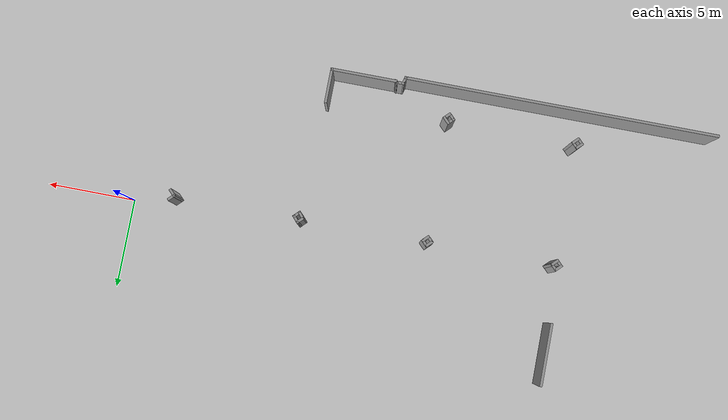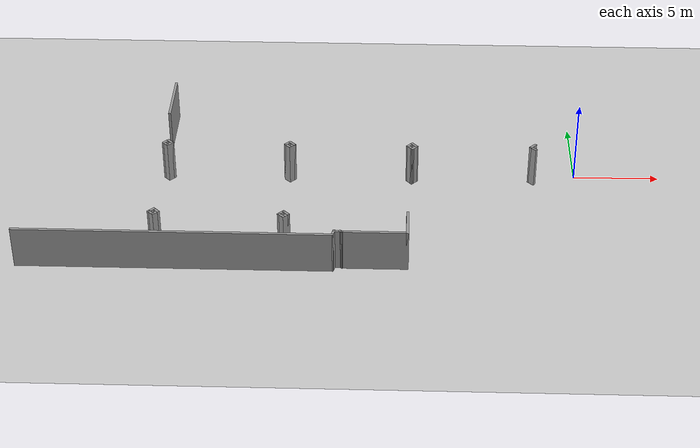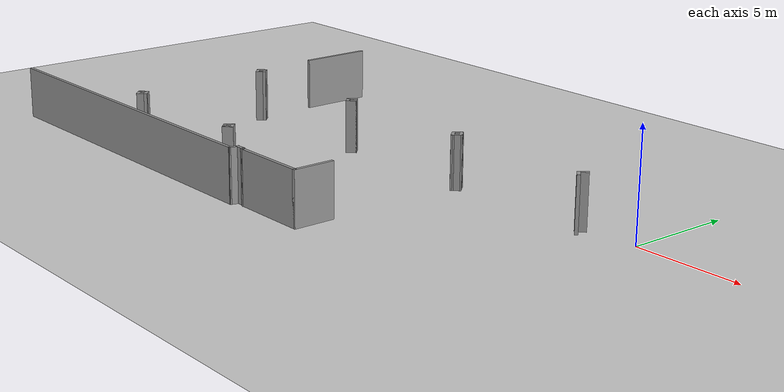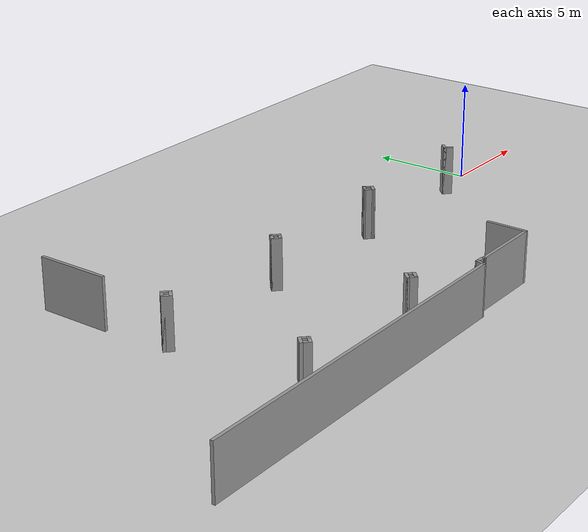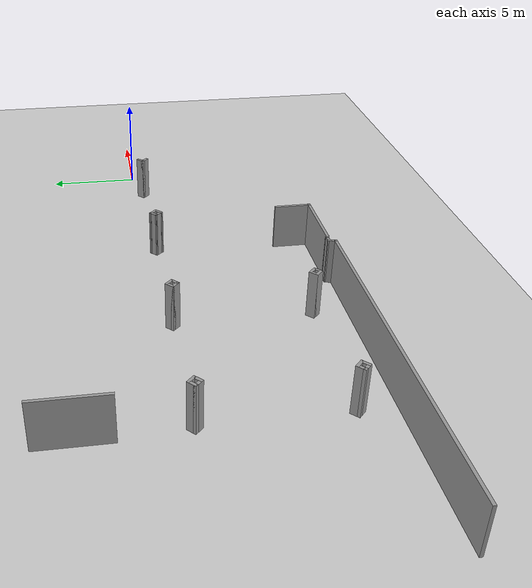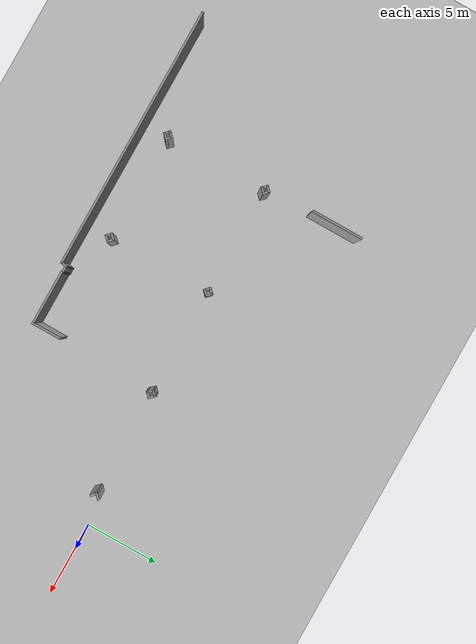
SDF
<sdf version="1.6">
 <world name="default">
  <model name="ground_plane">
   <static>1</static>
   <link name="link">
    <collision name="collision">
     <geometry><plane><normal>0 0 1</normal><size>100 100</size></plane></geometry>
     <surface><friction><ode><mu>100</mu><mu2>50</mu2></ode></friction></surface>
    </collision>
    <visual name="visual">
     <cast_shadows>0</cast_shadows>
     <geometry><plane><normal>0 0 1</normal><size>100 100</size></plane></geometry>
     <material>
      <script><uri>file://media/materials/scripts/gazebo.material</uri><name>Gazebo/Grey</name></script>
     </material>
    </visual>
   </link>
  </model>
  <model name="301_1f_2">
   <pose>0.932725 -1.08367 0 0 -0 0</pose>
   <link name="Wall_167">
    <collision name="Wall_167_Collision">
     <geometry><box><size>0.5 0.15 2.5</size></box></geometry>
     <pose>0 0 1.25 0 -0 0</pose>
    </collision>
    <visual name="Wall_167_Visual">
     <pose>0 0 1.25 0 -0 0</pose>
     <geometry><box><size>0.5 0.15 2.5</size></box></geometry>
     <material>
      <script><uri>file://media/materials/scripts/gazebo.material</uri><name>Gazebo/Grey</name></script>
      <ambient>1 1 1 1</ambient>
     </material>
     <meta><layer>0</layer></meta>
    </visual>
    <pose>-3.49561 0.694163 0 0 -0 0.785398</pose>
   </link>
   <link name="Wall_170">
    <collision name="Wall_170_Collision">
     <geometry><box><size>0.5 0.15 2.5</size></box></geometry>
     <pose>0 0 1.25 0 -0 0</pose>
    </collision>
    <visual name="Wall_170_Visual">
     <pose>0 0 1.25 0 -0 0</pose>
     <geometry><box><size>0.5 0.15 2.5</size></box></geometry>
     <material>
      <script><uri>file://media/materials/scripts/gazebo.material</uri><name>Gazebo/Grey</name></script>
      <ambient>1 1 1 1</ambient>
     </material>
     <meta><layer>0</layer></meta>
    </visual>
    <pose>-3.49561 0.446676 0 0 -0 2.35619</pose>
   </link>
   <link name="Wall_172">
    <collision name="Wall_172_Collision">
     <geometry><box><size>0.5 0.15 2.5</size></box></geometry>
     <pose>0 0 1.25 0 -0 0</pose>
    </collision>
    <visual name="Wall_172_Visual">
     <pose>0 0 1.25 0 -0 0</pose>
     <geometry><box><size>0.5 0.15 2.5</size></box></geometry>
     <material>
      <script><uri>file://media/materials/scripts/gazebo.material</uri><name>Gazebo/Grey</name></script>
      <ambient>1 1 1 1</ambient>
     </material>
     <meta><layer>0</layer></meta>
    </visual>
    <pose>-10.7145 0.617181 0 0 -0 0.785398</pose>
   </link>
   <link name="Wall_173">
    <collision name="Wall_173_Collision">
     <geometry><box><size>0.524753 0.15 2.5</size></box></geometry>
     <pose>0 0 1.25 0 -0 0</pose>
    </collision>
    <visual name="Wall_173_Visual">
     <pose>0 0 1.25 0 -0 0</pose>
     <geometry><box><size>0.524753 0.15 2.5</size></box></geometry>
     <material>
      <script><uri>file://media/materials/scripts/gazebo.material</uri><name>Gazebo/Grey</name></script>
      <ambient>1 1 1 1</ambient>
     </material>
     <meta><layer>0</layer></meta>
    </visual>
    <pose>-10.467 0.600221 0 0 -0 -0.849442</pose>
   </link>
   <link name="Wall_176">
    <collision name="Wall_176_Collision">
     <geometry><box><size>0.5 0.15 2.5</size></box></geometry>
     <pose>0 0 1.25 0 -0 0</pose>
    </collision>
    <visual name="Wall_176_Visual">
     <pose>0 0 1.25 0 -0 0</pose>
     <geometry><box><size>0.5 0.15 2.5</size></box></geometry>
     <material>
      <script><uri>file://media/materials/scripts/gazebo.material</uri><name>Gazebo/Grey</name></script>
      <ambient>1 1 1 1</ambient>
     </material>
     <meta><layer>0</layer></meta>
    </visual>
    <pose>-10.467 0.335774 0 0 -0 -2.35619</pose>
   </link>
   <link name="Wall_177">
    <collision name="Wall_177_Collision">
     <geometry><box><size>0.524753 0.15 2.5</size></box></geometry>
     <pose>0 0 1.25 0 -0 0</pose>
    </collision>
    <visual name="Wall_177_Visual">
     <pose>0 0 1.25 0 -0 0</pose>
     <geometry><box><size>0.524753 0.15 2.5</size></box></geometry>
     <material>
      <script><uri>file://media/materials/scripts/gazebo.material</uri><name>Gazebo/Grey</name></script>
      <ambient>1 1 1 1</ambient>
     </material>
     <meta><layer>0</layer></meta>
    </visual>
    <pose>-10.7145 0.352734 0 0 -0 2.29215</pose>
   </link>
   <link name="Wall_179">
    <collision name="Wall_179_Collision">
     <geometry><box><size>0.5 0.15 2.5</size></box></geometry>
     <pose>0 0 1.25 0 -0 0</pose>
    </collision>
    <visual name="Wall_179_Visual">
     <pose>0 0 1.25 0 -0 0</pose>
     <geometry><box><size>0.5 0.15 2.5</size></box></geometry>
     <material>
      <script><uri>file://media/materials/scripts/gazebo.material</uri><name>Gazebo/Grey</name></script>
      <ambient>1 1 1 1</ambient>
     </material>
     <meta><layer>0</layer></meta>
    </visual>
    <pose>-17.9208 0.580185 0 0 -0 0.785398</pose>
   </link>
   <link name="Wall_180">
    <collision name="Wall_180_Collision">
     <geometry><box><size>0.5 0.15 2.5</size></box></geometry>
     <pose>0 0 1.25 0 -0 0</pose>
    </collision>
    <visual name="Wall_180_Visual">
     <pose>0 0 1.25 0 -0 0</pose>
     <geometry><box><size>0.5 0.15 2.5</size></box></geometry>
     <material>
      <script><uri>file://media/materials/scripts/gazebo.material</uri><name>Gazebo/Grey</name></script>
      <ambient>1 1 1 1</ambient>
     </material>
     <meta><layer>0</layer></meta>
    </visual>
    <pose>-17.6733 0.580185 0 0 -0 -0.785398</pose>
   </link>
   <link name="Wall_181">
    <collision name="Wall_181_Collision">
     <geometry><box><size>0.5 0.15 2.5</size></box></geometry>
     <pose>0 0 1.25 0 -0 0</pose>
    </collision>
    <visual name="Wall_181_Visual">
     <pose>0 0 1.25 0 -0 0</pose>
     <geometry><box><size>0.5 0.15 2.5</size></box></geometry>
     <material>
      <script><uri>file://media/materials/scripts/gazebo.material</uri><name>Gazebo/Grey</name></script>
      <ambient>1 1 1 1</ambient>
     </material>
     <meta><layer>0</layer></meta>
    </visual>
    <pose>-17.6733 0.332697 0 0 -0 -2.35619</pose>
   </link>
   <link name="Wall_182">
    <collision name="Wall_182_Collision">
     <geometry><box><size>0.5 0.15 2.5</size></box></geometry>
     <pose>0 0 1.25 0 -0 0</pose>
    </collision>
    <visual name="Wall_182_Visual">
     <pose>0 0 1.25 0 -0 0</pose>
     <geometry><box><size>0.5 0.15 2.5</size></box></geometry>
     <material>
      <script><uri>file://media/materials/scripts/gazebo.material</uri><name>Gazebo/Grey</name></script>
      <ambient>1 1 1 1</ambient>
     </material>
     <meta><layer>0</layer></meta>
    </visual>
    <pose>-17.9208 0.332697 0 0 -0 2.35619</pose>
   </link>
   <link name="Wall_184">
    <collision name="Wall_184_Collision">
     <geometry><box><size>0.5 0.15 2.5</size></box></geometry>
     <pose>0 0 1.25 0 -0 0</pose>
    </collision>
    <visual name="Wall_184_Visual">
     <pose>0 0 1.25 0 -0 0</pose>
     <geometry><box><size>0.5 0.15 2.5</size></box></geometry>
     <material>
      <script><uri>file://media/materials/scripts/gazebo.material</uri><name>Gazebo/Grey</name></script>
      <ambient>1 1 1 1</ambient>
     </material>
     <meta><layer>0</layer></meta>
    </visual>
    <pose>-17.8535 -6.35033 0 0 -0 0.785398</pose>
   </link>
   <link name="Wall_185">
    <collision name="Wall_185_Collision">
     <geometry><box><size>0.5 0.15 2.5</size></box></geometry>
     <pose>0 0 1.25 0 -0 0</pose>
    </collision>
    <visual name="Wall_185_Visual">
     <pose>0 0 1.25 0 -0 0</pose>
     <geometry><box><size>0.5 0.15 2.5</size></box></geometry>
     <material>
      <script><uri>file://media/materials/scripts/gazebo.material</uri><name>Gazebo/Grey</name></script>
      <ambient>1 1 1 1</ambient>
     </material>
     <meta><layer>0</layer></meta>
    </visual>
    <pose>-17.606 -6.35033 0 0 -0 -0.785398</pose>
   </link>
   <link name="Wall_186">
    <collision name="Wall_186_Collision">
     <geometry><box><size>0.5 0.15 2.5</size></box></geometry>
     <pose>0 0 1.25 0 -0 0</pose>
    </collision>
    <visual name="Wall_186_Visual">
     <pose>0 0 1.25 0 -0 0</pose>
     <geometry><box><size>0.5 0.15 2.5</size></box></geometry>
     <material>
      <script><uri>file://media/materials/scripts/gazebo.material</uri><name>Gazebo/Grey</name></script>
      <ambient>1 1 1 1</ambient>
     </material>
     <meta><layer>0</layer></meta>
    </visual>
    <pose>-17.606 -6.59782 0 0 -0 -2.35619</pose>
   </link>
   <link name="Wall_187">
    <collision name="Wall_187_Collision">
     <geometry><box><size>0.5 0.15 2.5</size></box></geometry>
     <pose>0 0 1.25 0 -0 0</pose>
    </collision>
    <visual name="Wall_187_Visual">
     <pose>0 0 1.25 0 -0 0</pose>
     <geometry><box><size>0.5 0.15 2.5</size></box></geometry>
     <material>
      <script><uri>file://media/materials/scripts/gazebo.material</uri><name>Gazebo/Grey</name></script>
      <ambient>1 1 1 1</ambient>
     </material>
     <meta><layer>0</layer></meta>
    </visual>
    <pose>-17.8535 -6.59782 0 0 -0 2.35619</pose>
   </link>
   <link name="Wall_189">
    <collision name="Wall_189_Collision">
     <geometry><box><size>0.5 0.15 2.5</size></box></geometry>
     <pose>0 0 1.25 0 -0 0</pose>
    </collision>
    <visual name="Wall_189_Visual">
     <pose>0 0 1.25 0 -0 0</pose>
     <geometry><box><size>0.5 0.15 2.5</size></box></geometry>
     <material>
      <script><uri>file://media/materials/scripts/gazebo.material</uri><name>Gazebo/Grey</name></script>
      <ambient>1 1 1 1</ambient>
     </material>
     <meta><layer>0</layer></meta>
    </visual>
    <pose>-25.1204 0.557756 0 0 -0 0.785398</pose>
   </link>
   <link name="Wall_190">
    <collision name="Wall_190_Collision">
     <geometry><box><size>0.5 0.15 2.5</size></box></geometry>
     <pose>0 0 1.25 0 -0 0</pose>
    </collision>
    <visual name="Wall_190_Visual">
     <pose>0 0 1.25 0 -0 0</pose>
     <geometry><box><size>0.5 0.15 2.5</size></box></geometry>
     <material>
      <script><uri>file://media/materials/scripts/gazebo.material</uri><name>Gazebo/Grey</name></script>
      <ambient>1 1 1 1</ambient>
     </material>
     <meta><layer>0</layer></meta>
    </visual>
    <pose>-24.8729 0.557756 0 0 -0 -0.785398</pose>
   </link>
   <link name="Wall_191">
    <collision name="Wall_191_Collision">
     <geometry><box><size>0.5 0.15 2.5</size></box></geometry>
     <pose>0 0 1.25 0 -0 0</pose>
    </collision>
    <visual name="Wall_191_Visual">
     <pose>0 0 1.25 0 -0 0</pose>
     <geometry><box><size>0.5 0.15 2.5</size></box></geometry>
     <material>
      <script><uri>file://media/materials/scripts/gazebo.material</uri><name>Gazebo/Grey</name></script>
      <ambient>1 1 1 1</ambient>
     </material>
     <meta><layer>0</layer></meta>
    </visual>
    <pose>-24.8729 0.310269 0 0 -0 -2.35619</pose>
   </link>
   <link name="Wall_192">
    <collision name="Wall_192_Collision">
     <geometry><box><size>0.5 0.15 2.5</size></box></geometry>
     <pose>0 0 1.25 0 -0 0</pose>
    </collision>
    <visual name="Wall_192_Visual">
     <pose>0 0 1.25 0 -0 0</pose>
     <geometry><box><size>0.5 0.15 2.5</size></box></geometry>
     <material>
      <script><uri>file://media/materials/scripts/gazebo.material</uri><name>Gazebo/Grey</name></script>
      <ambient>1 1 1 1</ambient>
     </material>
     <meta><layer>0</layer></meta>
    </visual>
    <pose>-25.1204 0.310269 0 0 -0 2.35619</pose>
   </link>
   <link name="Wall_194">
    <collision name="Wall_194_Collision">
     <geometry><box><size>0.5 0.15 2.5</size></box></geometry>
     <pose>0 0 1.25 0 -0 0</pose>
    </collision>
    <visual name="Wall_194_Visual">
     <pose>0 0 1.25 0 -0 0</pose>
     <geometry><box><size>0.5 0.15 2.5</size></box></geometry>
     <material>
      <script><uri>file://media/materials/scripts/gazebo.material</uri><name>Gazebo/Grey</name></script>
      <ambient>1 1 1 1</ambient>
     </material>
     <meta><layer>0</layer></meta>
    </visual>
    <pose>-25.098 -6.30548 0 0 -0 0.785398</pose>
   </link>
   <link name="Wall_195">
    <collision name="Wall_195_Collision">
     <geometry><box><size>0.5 0.15 2.5</size></box></geometry>
     <pose>0 0 1.25 0 -0 0</pose>
    </collision>
    <visual name="Wall_195_Visual">
     <pose>0 0 1.25 0 -0 0</pose>
     <geometry><box><size>0.5 0.15 2.5</size></box></geometry>
     <material>
      <script><uri>file://media/materials/scripts/gazebo.material</uri><name>Gazebo/Grey</name></script>
      <ambient>1 1 1 1</ambient>
     </material>
     <meta><layer>0</layer></meta>
    </visual>
    <pose>-24.8505 -6.30548 0 0 -0 -0.785398</pose>
   </link>
   <link name="Wall_196">
    <collision name="Wall_196_Collision">
     <geometry><box><size>0.5 0.15 2.5</size></box></geometry>
     <pose>0 0 1.25 0 -0 0</pose>
    </collision>
    <visual name="Wall_196_Visual">
     <pose>0 0 1.25 0 -0 0</pose>
     <geometry><box><size>0.5 0.15 2.5</size></box></geometry>
     <material>
      <script><uri>file://media/materials/scripts/gazebo.material</uri><name>Gazebo/Grey</name></script>
      <ambient>1 1 1 1</ambient>
     </material>
     <meta><layer>0</layer></meta>
    </visual>
    <pose>-24.8505 -6.55296 0 0 -0 -2.35619</pose>
   </link>
   <link name="Wall_197">
    <collision name="Wall_197_Collision">
     <geometry><box><size>0.5 0.15 2.5</size></box></geometry>
     <pose>0 0 1.25 0 -0 0</pose>
    </collision>
    <visual name="Wall_197_Visual">
     <pose>0 0 1.25 0 -0 0</pose>
     <geometry><box><size>0.5 0.15 2.5</size></box></geometry>
     <material>
      <script><uri>file://media/materials/scripts/gazebo.material</uri><name>Gazebo/Grey</name></script>
      <ambient>1 1 1 1</ambient>
     </material>
     <meta><layer>0</layer></meta>
    </visual>
    <pose>-25.098 -6.55296 0 0 -0 2.35619</pose>
   </link>
   <link name="Wall_23">
    <collision name="Wall_23_Collision">
     <geometry><box><size>17.75 0.15 2.5</size></box></geometry>
     <pose>0 0 1.25 0 -0 0</pose>
    </collision>
    <visual name="Wall_23_Visual">
     <pose>0 0 1.25 0 -0 0</pose>
     <geometry><box><size>17.75 0.15 2.5</size></box></geometry>
     <material>
      <script><uri>file://media/materials/scripts/gazebo.material</uri><name>Gazebo/Grey</name></script>
      <ambient>1 1 1 1</ambient>
     </material>
     <meta><layer>0</layer></meta>
    </visual>
    <pose>-23.7569 -8.28571 0 0 -0 0</pose>
   </link>
   <link name="Wall_24">
    <collision name="Wall_24_Collision">
     <geometry><box><size>0.5 0.15 2.5</size></box></geometry>
     <pose>0 0 1.25 0 -0 0</pose>
    </collision>
    <visual name="Wall_24_Visual">
     <pose>0 0 1.25 0 -0 0</pose>
     <geometry><box><size>0.5 0.15 2.5</size></box></geometry>
     <material>
      <script><uri>file://media/materials/scripts/gazebo.material</uri><name>Gazebo/Grey</name></script>
      <ambient>1 1 1 1</ambient>
     </material>
     <meta><layer>0</layer></meta>
    </visual>
    <pose>-14.9116 -8.11668 0 0 -0 1.309</pose>
   </link>
   <link name="Wall_25">
    <collision name="Wall_25_Collision">
     <geometry><box><size>0.5 0.15 2.5</size></box></geometry>
     <pose>0 0 1.25 0 -0 0</pose>
    </collision>
    <visual name="Wall_25_Visual">
     <pose>0 0 1.25 0 -0 0</pose>
     <geometry><box><size>0.5 0.15 2.5</size></box></geometry>
     <material>
      <script><uri>file://media/materials/scripts/gazebo.material</uri><name>Gazebo/Grey</name></script>
      <ambient>1 1 1 1</ambient>
     </material>
     <meta><layer>0</layer></meta>
    </visual>
    <pose>-14.6913 -7.94764 0 0 -0 0</pose>
   </link>
   <link name="Wall_26">
    <collision name="Wall_26_Collision">
     <geometry><box><size>0.25 0.15 2.5</size></box></geometry>
     <pose>0 0 1.25 0 -0 0</pose>
    </collision>
    <visual name="Wall_26_Visual">
     <pose>0 0 1.25 0 -0 0</pose>
     <geometry><box><size>0.25 0.15 2.5</size></box></geometry>
     <material>
      <script><uri>file://media/materials/scripts/gazebo.material</uri><name>Gazebo/Grey</name></script>
      <ambient>1 1 1 1</ambient>
     </material>
     <meta><layer>0</layer></meta>
    </visual>
    <pose>-14.473 -7.97264 0 0 -0 -0.523599</pose>
   </link>
   <link name="Wall_27">
    <collision name="Wall_27_Collision">
     <geometry><box><size>3.75 0.15 2.5</size></box></geometry>
     <pose>0 0 1.25 0 -0 0</pose>
    </collision>
    <visual name="Wall_27_Visual">
     <pose>0 0 1.25 0 -0 0</pose>
     <geometry><box><size>3.75 0.15 2.5</size></box></geometry>
     <material>
      <script><uri>file://media/materials/scripts/gazebo.material</uri><name>Gazebo/Grey</name></script>
      <ambient>1 1 1 1</ambient>
     </material>
     <meta><layer>0</layer></meta>
    </visual>
    <pose>-12.6297 -7.99764 0 0 -0 0</pose>
   </link>
   <link name="Wall_28">
    <collision name="Wall_28_Collision">
     <geometry><box><size>2 0.15 2.5</size></box></geometry>
     <pose>0 0 1.25 0 -0 0</pose>
    </collision>
    <visual name="Wall_28_Visual">
     <pose>0 0 1.25 0 -0 0</pose>
     <geometry><box><size>2 0.15 2.5</size></box></geometry>
     <material>
      <script><uri>file://media/materials/scripts/gazebo.material</uri><name>Gazebo/Grey</name></script>
      <ambient>1 1 1 1</ambient>
     </material>
     <meta><layer>0</layer></meta>
    </visual>
    <pose>-10.8297 -7.07264 0 0 -0 1.5708</pose>
   </link>
   <link name="Wall_98">
    <collision name="Wall_98_Collision">
     <geometry><box><size>3.5 0.15 2.5</size></box></geometry>
     <pose>0 0 1.25 0 -0 0</pose>
    </collision>
    <visual name="Wall_98_Visual">
     <pose>0 0 1.25 0 -0 0</pose>
     <geometry><box><size>3.5 0.15 2.5</size></box></geometry>
     <material>
      <script><uri>file://media/materials/scripts/gazebo.material</uri><name>Gazebo/Grey</name></script>
      <ambient>1 1 1 1</ambient>
     </material>
     <meta><layer>0</layer></meta>
    </visual>
    <pose>-25.2896 5.34604 0 0 -0 1.5708</pose>
   </link>
   <static>1</static>
  </model>
 </world>
</sdf>
